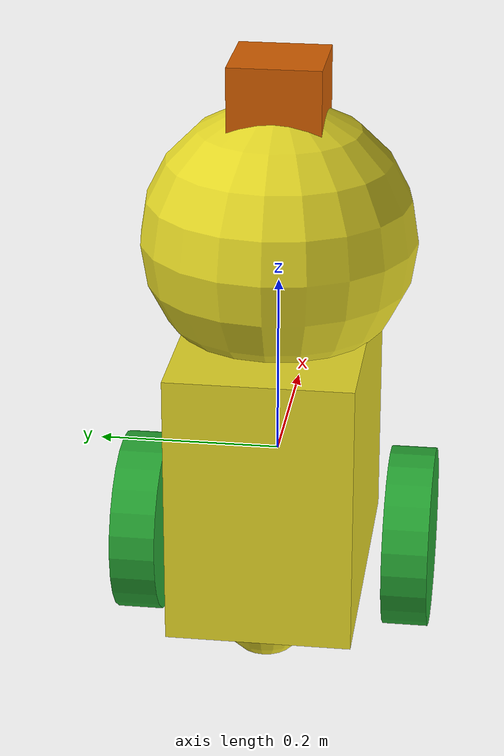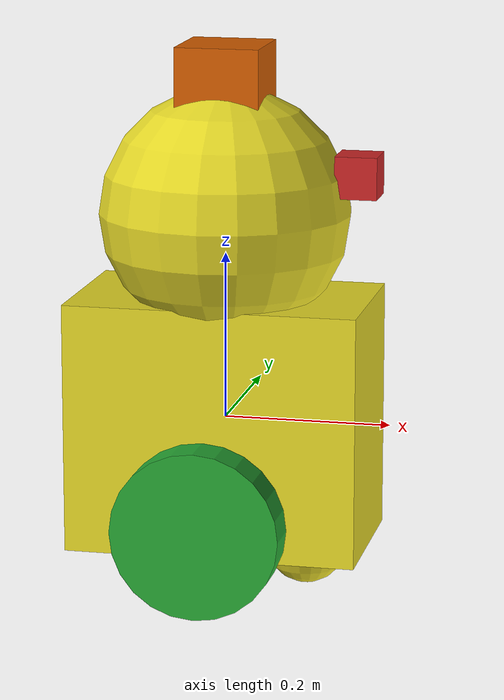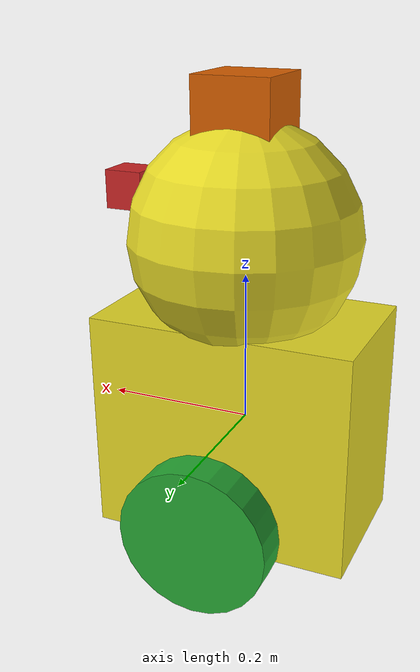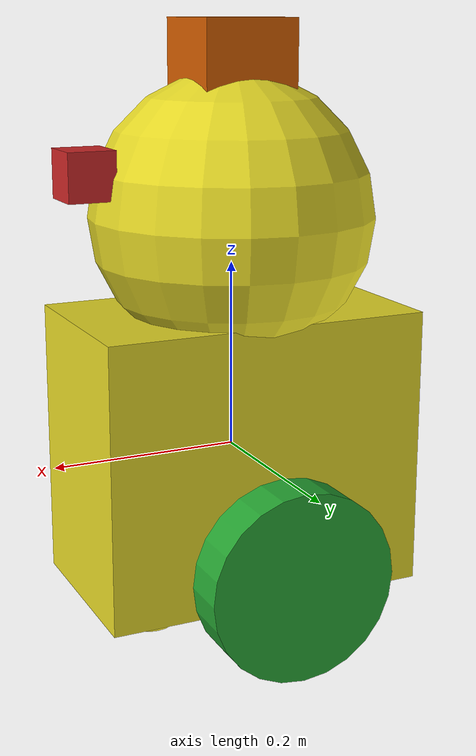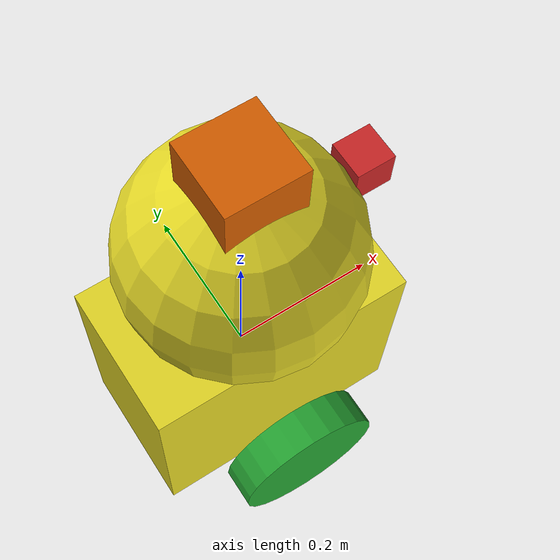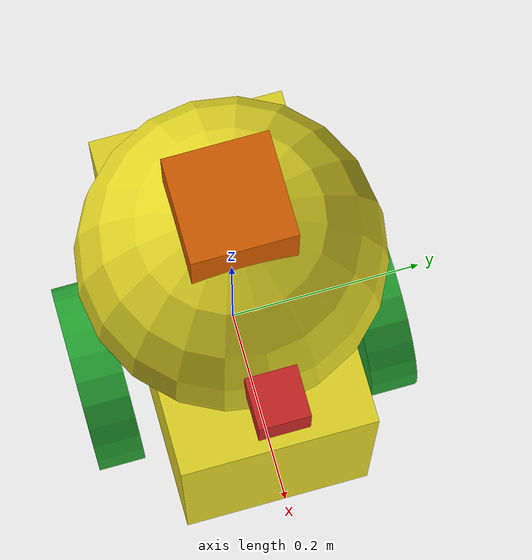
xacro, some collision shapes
<?xml version='1.0'?>

<robot name="my_robot" xmlns:xacro="http://www.ros.org/wiki/xacro">

  <xacro:include filename="$(find RoboND_where_am_i)/urdf/my_robot.gazebo" />

  <link name="robot_footprint"></link>

  <joint name="robot_footprint_joint" type="fixed">
    <origin xyz="0 0 0" rpy="0 0 0" />
    <parent link="robot_footprint"/>
    <child link="chassis" />
  </joint>

  <link name='chassis'>
    <pose>0 0 0.1 0 0 0</pose>

    <inertial>
      <mass value="15.0"/>
      <origin xyz="0.0 0 0" rpy=" 0 0 0"/>
      <inertia
          ixx="0.1" ixy="0" ixz="0"
          iyy="0.1" iyz="0"
          izz="0.1"
      />
    </inertial>

    <collision name='collision'>
      <origin xyz="0 0 0" rpy=" 0 0 0"/>
      <geometry>
        <box size=".35 .2 .3"/>
      </geometry>
    </collision>

    <visual name='chassis_visual'>
      <origin xyz="0 0 0" rpy=" 0 0 0"/>
      <geometry>
        <box size=".35 .2 .3"/>
      </geometry>
    </visual>

    <collision name='head_collision'>
      <origin xyz="0 0 0.25" rpy=" 0 0 0"/>
      <geometry>
        <sphere radius="0.15"/>
      </geometry>
    </collision>
    <visual name='head_visual'>
      <origin xyz="0 0 0.25" rpy=" 0 0 0"/>
      <geometry>
        <sphere radius="0.15"/>
      </geometry>
    </visual>

    <collision name='back_caster_collision'>
      <origin xyz="-0.1 0 -0.15" rpy=" 0 0 0"/>
      <geometry>
        <sphere radius="0.0499"/>
      </geometry>
    </collision>

    <visual name='back_caster_visual'>
      <origin xyz="-0.1 0 -0.15" rpy=" 0 0 0"/>
      <geometry>
        <sphere radius="0.05"/>
      </geometry>
    </visual>

    <collision name='front_caster_collision'>
      <origin xyz="0.1 0 -0.15" rpy=" 0 0 0"/>
      <geometry>
        <sphere radius="0.0499"/>
      </geometry>
    </collision>

    <visual name='front_caster_visual'>
      <origin xyz="0.1 0 -0.15" rpy=" 0 0 0"/>
      <geometry>
        <sphere radius="0.05"/>
      </geometry>
    </visual>

  </link>

  <!-- ********* LEFT WHEEL ******** -->
  <link name='left_wheel'>

    <inertial>
      <mass value="5.0"/>
      <origin xyz="0.0 0 0" rpy=" 0 1.5707 1.5707"/>
      <inertia
          ixx="0.1" ixy="0" ixz="0"
          iyy="0.1" iyz="0"
          izz="0.1"
      />
    </inertial>

    <collision name='left_wheel_collision'>
      <origin xyz="0 0 0" rpy=" 0 1.5707 1.5707"/>
      <geometry>
        <cylinder radius="0.1" length="0.05"/>
      </geometry>
    </collision>

    <visual name='left_wheel_visual'>
      <origin xyz="0 0 0" rpy=" 0 1.5707 1.5707"/>
      <geometry>
        <cylinder radius="0.1" length="0.05"/>
      </geometry>
    </visual>

  </link>

  <joint type="continuous" name="left_wheel_hinge">
    <origin xyz="0 0.15 -0.1" rpy="0 0 0"/>
    <child link="left_wheel"/>
    <parent link="chassis"/>
    <axis xyz="0 1 0" rpy="0 0 0"/>
    <limit effort="10000" velocity="1000"/>
    <dynamics damping="1.0" friction="1.0"/>
  </joint>

  <!-- ********* RIGHT WHEEL ******** -->
  <link name='right_wheel'>

    <inertial>
      <mass value="5.0"/>
      <origin xyz="0.0 0 0" rpy=" 0 1.5707 1.5707"/>
      <inertia
          ixx="0.1" ixy="0" ixz="0"
          iyy="0.1" iyz="0"
          izz="0.1"
      />
    </inertial>

    <collision name='right_wheel_collision'>
      <origin xyz="0 0 0" rpy=" 0 1.5707 1.5707"/>
      <geometry>
        <cylinder radius="0.1" length="0.05"/>
      </geometry>
    </collision>

    <visual name='right_wheel_visual'>
      <origin xyz="0 0 0" rpy=" 0 1.5707 1.5707"/>
      <geometry>
        <cylinder radius="0.1" length="0.05"/>
      </geometry>
    </visual>

  </link>

  <joint type="continuous" name="right_wheel_hinge">
    <origin xyz="0 -0.15 -0.1" rpy="0 0 0"/>
    <child link="right_wheel"/>
    <parent link="chassis"/>
    <axis xyz="0 1 0" rpy="0 0 0"/>
    <limit effort="10000" velocity="1000"/>
    <dynamics damping="1.0" friction="1.0"/>
  </joint>

  <!-- ********* CAMERA SENSOR ******** -->
  <link name='camera'>

    <inertial>
      <mass value="0.1"/>
      <origin xyz="0.0 0 0" rpy=" 0 0 0"/>
      <inertia
          ixx="1e-6" ixy="0" ixz="0"
          iyy="1e-6" iyz="0"
          izz="1e-6"
      />
    </inertial>

    <collision name='camera_collision'>
      <origin xyz="0 0 0" rpy=" 0 0 0"/>
      <geometry>
        <box size=".05 .05 .05"/>
      </geometry>
    </collision>

    <visual name='camera_visual'>
      <origin xyz="0 0 0" rpy=" 0 0 0"/>
      <geometry>
        <box size=".05 .05 .05"/>
      </geometry>
    </visual>

  </link>

  <joint type="fixed" name="camera_joint">
    <origin xyz=".16 0 0.3" rpy="0 0 0"/>
    <child link="camera"/>
    <parent link="chassis"/>
    <axis xyz="0 1 0" rpy="0 0 0"/>
    <limit effort="10000" velocity="1000"/>
    <dynamics damping="1.0" friction="1.0"/>
  </joint>

  <!-- ********* hokuyo SENSOR ******** -->
  <link name='hokuyo'>

    <inertial>
      <mass value="1e-5"/>
      <origin xyz="0.0 0 0" rpy=" 0 0 0"/>
      <inertia
          ixx="1e-6" ixy="0" ixz="0"
          iyy="1e-6" iyz="0"
          izz="1e-6"
      />
    </inertial>

    <collision name='hokuyo_collision'>
      <origin xyz="0 0 0" rpy=" 0 0 0"/>
      <geometry>
        <box size=".1 .1 .1"/>
      </geometry>
    </collision>

    <visual name='hokuyo_visual'>
      <origin xyz="0 0 0" rpy=" 0 0 0"/>
      <geometry>
        <mesh filename="package://RoboND_where_am_i/meshes/hokuyo.dae" scale="1 1 1"/>
      </geometry>
    </visual>

  </link>

  <joint type="fixed" name="hokuyo_joint">
    <origin xyz="0 0 .4" rpy="0 0 0"/>
    <child link="hokuyo"/>
    <parent link="chassis"/>
    <axis xyz="0 1 0" rpy="0 0 0"/>
    <limit effort="10000" velocity="1000"/>
    <dynamics damping="1.0" friction="1.0"/>
  </joint>

</robot>
